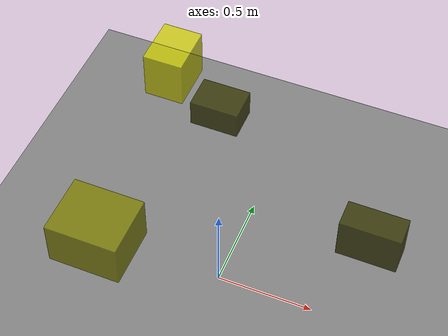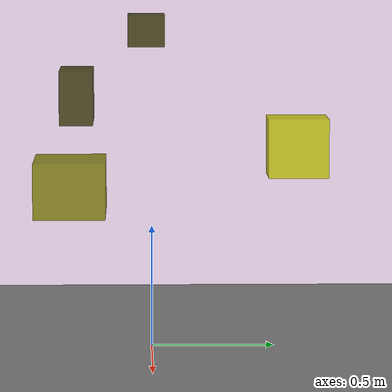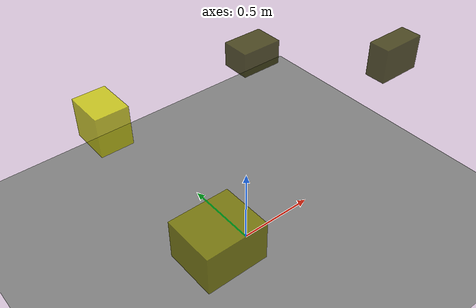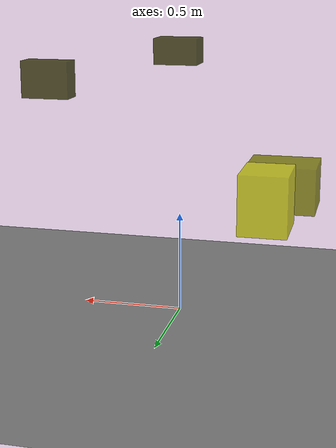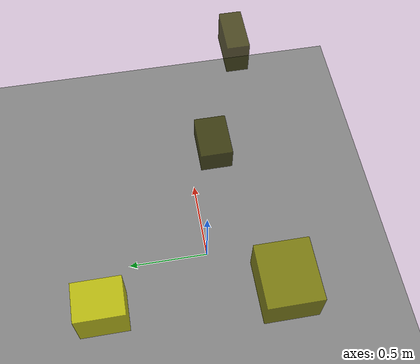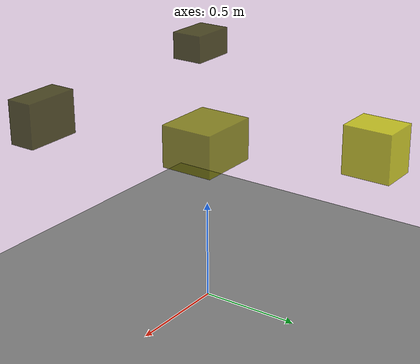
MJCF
<?xml version="1.0"?>
<mujoco model="obstacle_scene">
  <compiler angle="radian" coordinate="local"/>
  <option timestep="0.001" gravity="0 0 -9.81"/>

  <asset>
    <material name="obstacle_mat" rgba="0.8 0.8 0.0 0.8"/>
    <material name="ground_mat" rgba="0.5 0.5 0.5 1"/>
  </asset>

  <worldbody>
    <!-- Ground plane -->
    <geom name="ground" type="plane" size="3 3 0.1" material="ground_mat"/>

    <!-- Obstacles -->
    <body name="obstacle_0" pos="0.784094 -0.280797 1.113957">
      <geom name="obs_0" type="box" size="0.128783 0.060787 0.097930" rgba="0.2 0.2 0.0 0.8"/>
    </body>
    <body name="obstacle_1" pos="-0.467142 -0.348304 0.594648">
      <geom name="obs_1" type="box" size="0.178618 0.153436 0.118997" rgba="0.5 0.5 0.0 0.8"/>
    </body>
    <body name="obstacle_2" pos="-0.509714 0.632590 0.762072">
      <geom name="obs_2" type="box" size="0.101621 0.128562 0.126648" rgba="0.8 0.8 0.0 0.8"/>
    </body>
    <body name="obstacle_3" pos="0.014543 -0.021828 1.300622">
      <geom name="obs_3" type="box" size="0.104566 0.074153 0.061253" rgba="0.2 0.2 0.0 0.8"/>
    </body>
  </worldbody>
</mujoco>
